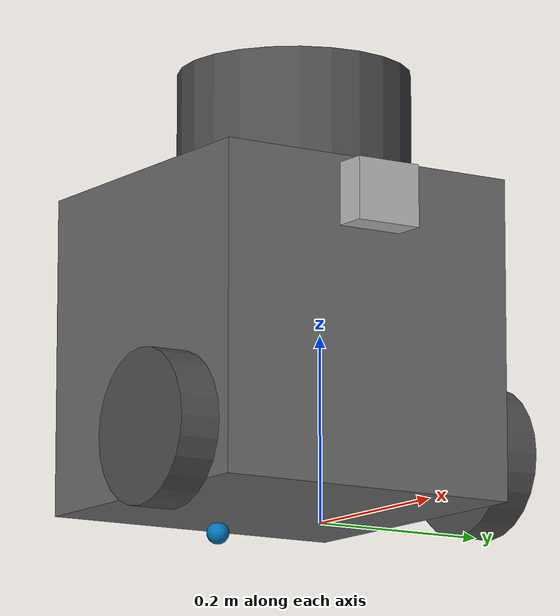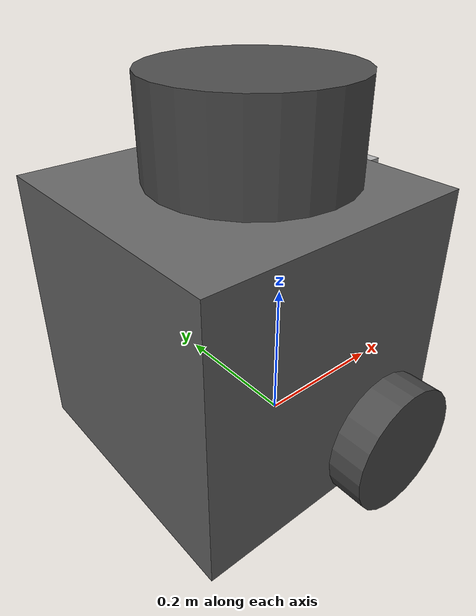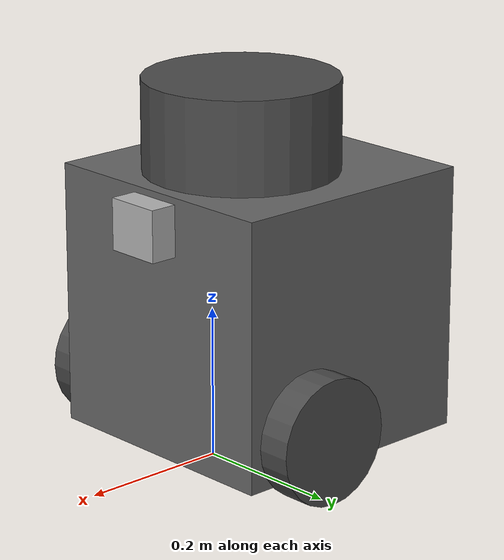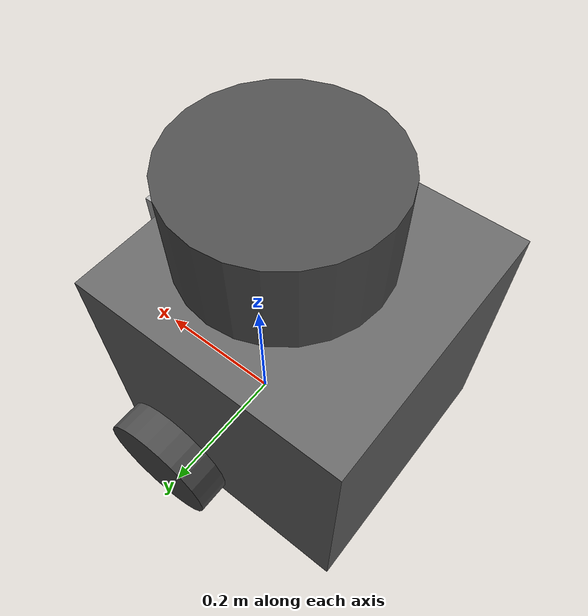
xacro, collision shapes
<?xml version="1.0" ?>
<robot name="turtlebot3_burger_cam"
  xmlns:xacro="http://ros.org">

  <material name="black">
      <color rgba="0.0 0.0 0.0 1.0"/>
  </material>

  <material name="dark">
    <color rgba="0.3 0.3 0.3 1.0"/>
  </material>

  <material name="light_black">
    <color rgba="0.4 0.4 0.4 1.0"/>
  </material>

  <material name="blue">
    <color rgba="0.0 0.0 0.8 1.0"/>
  </material>

  <material name="green">
    <color rgba="0.0 0.8 0.0 1.0"/>
  </material>

  <material name="grey">
    <color rgba="0.5 0.5 0.5 1.0"/>
  </material>

  <material name="orange">
    <color rgba="1.0 0.4235 0.0392 1.0"/>
  </material>

  <material name="brown">
    <color rgba="0.8706 0.8118 0.7647 1.0"/>
  </material>

  <material name="red">
    <color rgba="0.8 0.0 0.0 1.0"/>
  </material>

  <material name="white">
    <color rgba="1.0 1.0 1.0 1.0"/>
  </material>

  <link name="base_footprint"/>

  <joint name="base_joint" type="fixed">
    <parent link="base_footprint"/>
    <child link="base_link"/>
    <origin xyz="0.0 0.0 0.025" rpy="0 0 0"/>
  </joint>

  <link name="base_link">
    <visual>
      <origin xyz="-0.080 0 0.0" rpy="0 0 0"/>
      <geometry>
        <mesh filename="file://$(find amar_description)/models/turtlebot3_common/meshes/bases/burger_base.stl" scale="0.0025 0.0025 0.0025"/>
      </geometry>
      <material name="light_black"/>
    </visual>

    <collision>
      <origin xyz="-0.080 0 0.175" rpy="0 0 0"/>
      <geometry>
        <box size="0.350 0.350 0.350"/>
      </geometry>
    </collision>

    <inertial>
      <origin xyz="-0.080 0 0.175" rpy="0 0 0"/>
      <mass value="12.9"/>
      <inertia ixx="0.3" ixy="0.0" ixz="0.0" iyy="0.3" iyz="0.0" izz="0.3" />
    </inertial>
  </link>

  <joint name="wheel_left_joint" type="continuous">
    <parent link="base_link"/>
    <child link="wheel_left_link"/>
    <origin xyz="0.0 0.200 0.0575" rpy="-1.57 0 0"/>
    <axis xyz="0 0 1"/>
  </joint>

  <link name="wheel_left_link">
    <visual>
      <origin xyz="0 0 0" rpy="1.57 0 0"/>
      <geometry>
        <mesh filename="file://$(find amar_description)/models/turtlebot3_common/meshes/wheels/left_tire.stl" scale="0.0025 0.0025 0.0025"/>
      </geometry>
      <material name="dark"/>
    </visual>

    <collision>
      <origin xyz="0 0 0" rpy="0 0 0"/>
      <geometry>
        <cylinder length="0.045" radius="0.0825"/>
      </geometry>
    </collision>

    <inertial>
      <origin xyz="0 0 0" />
      <mass value="0.445" />
      <inertia ixx="0.001" ixy="0.0" ixz="0.0" iyy="0.002" iyz="0.0" izz="0.001" />
    </inertial>
  </link>

  <joint name="wheel_right_joint" type="continuous">
    <parent link="base_link"/>
    <child link="wheel_right_link"/>
    <origin xyz="0.0 -0.200 0.0575" rpy="-1.57 0 0"/>
    <axis xyz="0 0 1"/>
  </joint>

  <link name="wheel_right_link">
    <visual>
      <origin xyz="0 0 0" rpy="1.57 0 0"/>
      <geometry>
        <mesh filename="file://$(find amar_description)/models/turtlebot3_common/meshes/wheels/right_tire.stl" scale="0.0025 0.0025 0.0025"/>
      </geometry>
      <material name="dark"/>
    </visual>

    <collision>
      <origin xyz="0 0 0" rpy="0 0 0"/>
      <geometry>
        <cylinder length="0.045" radius="0.0825"/>
      </geometry>
    </collision>

    <inertial>
      <origin xyz="0 0 0" />
      <mass value="0.445" />
      <inertia ixx="0.001" ixy="0.0" ixz="0.0" iyy="0.002" iyz="0.0" izz="0.001" />
    </inertial>
  </link>

  <joint name="caster_back_joint" type="fixed">
    <parent link="base_link"/>
    <child link="caster_back_link"/>
    <origin xyz="-0.2025 0 -0.010" rpy="-1.57 0 0"/>
  </joint>

  <link name="caster_back_link">
    <collision>
      <origin xyz="0 0 0" rpy="0 0 0"/>
      <geometry>
        <sphere radius="0.0125"/>
      </geometry>
    </collision>

    <inertial>
      <origin xyz="0 0 0" />
      <mass value="0.078125" />
      <inertia ixx="0.09765" ixy="0.0" ixz="0.0" iyy="0.09765" iyz="0.0" izz="0.09765" />
    </inertial>
  </link>

  <joint name="imu_joint" type="fixed">
    <parent link="base_link"/>
    <child link="imu_link"/>
    <origin xyz="-0.080 0 0.170" rpy="0 0 0"/>
  </joint>

  <link name="imu_link"/>

  <joint name="scan_joint" type="fixed">
    <parent link="base_link"/>
    <child link="base_scan"/>
    <origin xyz="-0.080 0 0.4275" rpy="0 0 0"/>
  </joint>

  <link name="base_scan">
    <visual>
      <origin xyz="0 0 0" rpy="0 0 0"/>
      <geometry>
        <mesh filename="file://$(find amar_description)/models/turtlebot3_common/meshes/sensors/lds.stl" scale="0.0025 0.0025 0.0025"/>
      </geometry>
      <material name="dark"/>
    </visual>

    <collision>
      <origin xyz="0.030 0 -0.025" rpy="0 0 0"/>
      <geometry>
        <cylinder length="0.1375" radius="0.1270"/>
      </geometry>
    </collision>

    <inertial>
      <origin xyz="0.030 0 -0.025" />
      <mass value="1.78125" />
      <inertia ixx="0.09765" ixy="0.0" ixz="0.0" iyy="0.09765" iyz="0.0" izz="0.09765" />
    </inertial>
  </link>

  <joint name="camera_joint" type="fixed">
    <origin xyz="0.100 0.000 0.275" rpy="0 0 0"/>
    <parent link="base_link"/>
    <child link="camera_link"/>
  </joint>

  <link name="camera_link">
    <collision>
      <origin xyz="0.0125 0.000 0.0325" rpy="0 0 0"/>
      <geometry>
        <box size="0.0375 0.075 0.0675"/>
      </geometry>
    </collision>
    <inertial>
      <origin xyz="0.090 0 -0.0425" />
      <mass value="0.546875" />
      <inertia ixx="0.09765" ixy="0.0" ixz="0.0" iyy="0.09765" iyz="0.0" izz="0.09765" />
    </inertial>
  </link>

  <joint name="camera_rgb_joint" type="fixed">
    <origin xyz="0.0075 0.000 0.0225" rpy="0 0 0"/>
    <parent link="camera_link"/>
    <child link="camera_rgb_frame"/>
  </joint>
  <link name="camera_rgb_frame"/>

  <joint name="camera_rgb_optical_joint" type="fixed">
    <origin xyz="0 0 0" rpy="-1.5707 0 -1.57"/>
    <parent link="camera_rgb_frame"/>
    <child link="camera_rgb_optical_frame"/>
  </joint>
  <link name="camera_rgb_optical_frame"/>

</robot>
